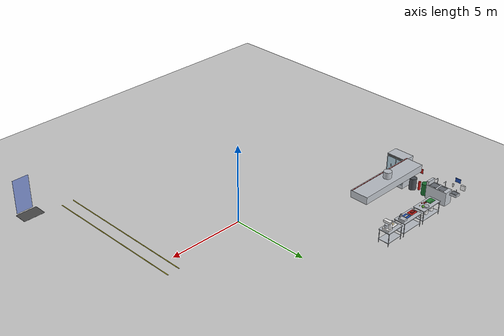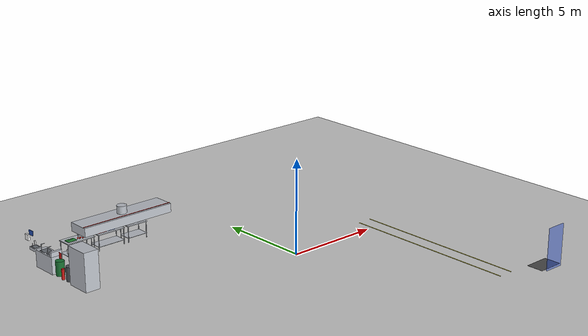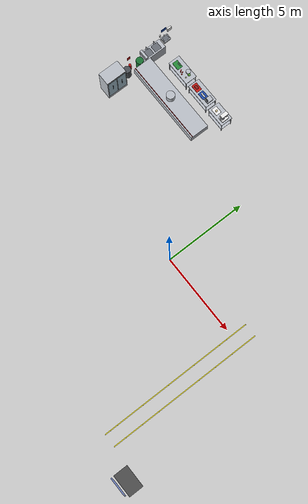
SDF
<sdf version="1.7">
 <world name="default">
  <model name="ground_plane">
   <static>1</static>
   <link name="link">
    <collision name="collision">
     <geometry><plane><normal>0 0 1</normal><size>100 100</size></plane></geometry>
     <surface><friction><ode><mu>100</mu><mu2>50</mu2></ode></friction></surface>
    </collision>
    <visual name="visual">
     <cast_shadows>0</cast_shadows>
     <geometry><plane><normal>0 0 1</normal><size>100 100</size></plane></geometry>
     <material>
      <script><uri>file://media/materials/scripts/gazebo.material</uri><name>Gazebo/Grey</name></script>
     </material>
    </visual>
   </link>
  </model>
  <model name="tunibot_layout">
   <static>1</static>
   <link name="entrance_door">
    <pose>8.075 -9.686 1.100 0 0 0.0000</pose>
    <collision name="entrance_door_collision">
     <geometry><box><size>1.050 0.060 2.200</size></box></geometry>
    </collision>
    <visual name="entrance_door_visual">
     <geometry><box><size>1.050 0.060 2.200</size></box></geometry>
     <material>
      <script><uri>file://media/materials/scripts/gazebo.material</uri><name>Gazebo/BlueTransparent</name></script>
     </material>
    </visual>
   </link>
   <link name="mark_entrance">
    <pose>8.075 -9.100 0.002 0 0 0.0000</pose>
    <visual name="mark_entrance_visual">
     <geometry><box><size>1.400 0.900 0.004</size></box></geometry>
     <material>
      <script><uri>file://media/materials/scripts/gazebo.material</uri><name>Gazebo/DarkGrey</name></script>
     </material>
    </visual>
   </link>
   <link name="lane_3_l">
    <pose>5.400 -3.800 0.002 0 0 -1.5708</pose>
    <visual name="lane_3_l_visual">
     <geometry><box><size>9.600 0.050 0.004</size></box></geometry>
     <material>
      <script><uri>file://media/materials/scripts/gazebo.material</uri><name>Gazebo/Yellow</name></script>
     </material>
    </visual>
   </link>
   <link name="lane_3_r">
    <pose>6.200 -3.800 0.002 0 0 -1.5708</pose>
    <visual name="lane_3_r_visual">
     <geometry><box><size>9.600 0.050 0.004</size></box></geometry>
     <material>
      <script><uri>file://media/materials/scripts/gazebo.material</uri><name>Gazebo/Yellow</name></script>
     </material>
    </visual>
   </link>
   <link name="k_hood">
    <visual name="k_hood_v0">
     <pose>-6.700 5.325 2.225 0 0 0.0000</pose>
     <geometry><box><size>5.100 1.150 0.450</size></box></geometry>
     <material>
      <ambient>0.44 0.46 0.47 1</ambient>
      <diffuse>0.74 0.76 0.79 1</diffuse>
      <specular>0.80 0.80 0.80 1</specular>
     </material>
    </visual>
    <visual name="k_hood_v1">
     <pose>-8.940 5.325 1.995 0 0 0.0000</pose>
     <geometry><box><size>0.220 0.650 0.010</size></box></geometry>
     <material>
      <ambient>0.25 0.26 0.28 1</ambient>
      <diffuse>0.42 0.44 0.47 1</diffuse>
      <specular>0.15 0.15 0.15 1</specular>
     </material>
    </visual>
    <visual name="k_hood_v2">
     <pose>-8.630 5.325 1.995 0 0 0.0000</pose>
     <geometry><box><size>0.220 0.650 0.010</size></box></geometry>
     <material>
      <ambient>0.25 0.26 0.28 1</ambient>
      <diffuse>0.42 0.44 0.47 1</diffuse>
      <specular>0.15 0.15 0.15 1</specular>
     </material>
    </visual>
    <visual name="k_hood_v3">
     <pose>-8.320 5.325 1.995 0 0 0.0000</pose>
     <geometry><box><size>0.220 0.650 0.010</size></box></geometry>
     <material>
      <ambient>0.25 0.26 0.28 1</ambient>
      <diffuse>0.42 0.44 0.47 1</diffuse>
      <specular>0.15 0.15 0.15 1</specular>
     </material>
    </visual>
    <visual name="k_hood_v4">
     <pose>-8.010 5.325 1.995 0 0 0.0000</pose>
     <geometry><box><size>0.220 0.650 0.010</size></box></geometry>
     <material>
      <ambient>0.25 0.26 0.28 1</ambient>
      <diffuse>0.42 0.44 0.47 1</diffuse>
      <specular>0.15 0.15 0.15 1</specular>
     </material>
    </visual>
    <visual name="k_hood_v5">
     <pose>-7.700 5.325 1.995 0 0 0.0000</pose>
     <geometry><box><size>0.220 0.650 0.010</size></box></geometry>
     <material>
      <ambient>0.25 0.26 0.28 1</ambient>
      <diffuse>0.42 0.44 0.47 1</diffuse>
      <specular>0.15 0.15 0.15 1</specular>
     </material>
    </visual>
    <visual name="k_hood_v6">
     <pose>-7.390 5.325 1.995 0 0 0.0000</pose>
     <geometry><box><size>0.220 0.650 0.010</size></box></geometry>
     <material>
      <ambient>0.25 0.26 0.28 1</ambient>
      <diffuse>0.42 0.44 0.47 1</diffuse>
      <specular>0.15 0.15 0.15 1</specular>
     </material>
    </visual>
    <visual name="k_hood_v7">
     <pose>-7.080 5.325 1.995 0 0 0.0000</pose>
     <geometry><box><size>0.220 0.650 0.010</size></box></geometry>
     <material>
      <ambient>0.25 0.26 0.28 1</ambient>
      <diffuse>0.42 0.44 0.47 1</diffuse>
      <specular>0.15 0.15 0.15 1</specular>
     </material>
    </visual>
    <visual name="k_hood_v8">
     <pose>-6.770 5.325 1.995 0 0 0.0000</pose>
     <geometry><box><size>0.220 0.650 0.010</size></box></geometry>
     <material>
      <ambient>0.25 0.26 0.28 1</ambient>
      <diffuse>0.42 0.44 0.47 1</diffuse>
      <specular>0.15 0.15 0.15 1</specular>
     </material>
    </visual>
    <visual name="k_hood_v9">
     <pose>-6.460 5.325 1.995 0 0 0.0000</pose>
     <geometry><box><size>0.220 0.650 0.010</size></box></geometry>
     <material>
      <ambient>0.25 0.26 0.28 1</ambient>
      <diffuse>0.42 0.44 0.47 1</diffuse>
      <specular>0.15 0.15 0.15 1</specular>
     </material>
    </visual>
    <visual name="k_hood_v10">
     <pose>-6.150 5.325 1.995 0 0 0.0000</pose>
     <geometry><box><size>0.220 0.650 0.010</size></box></geometry>
     <material>
      <ambient>0.25 0.26 0.28 1</ambient>
      <diffuse>0.42 0.44 0.47 1</diffuse>
      <specular>0.15 0.15 0.15 1</specular>
     </material>
    </visual>
    <visual name="k_hood_v11">
     <pose>-5.840 5.325 1.995 0 0 0.0000</pose>
     <geometry><box><size>0.220 0.650 0.010</size></box></geometry>
     <material>
      <ambient>0.25 0.26 0.28 1</ambient>
      <diffuse>0.42 0.44 0.47 1</diffuse>
      <specular>0.15 0.15 0.15 1</specular>
     </material>
    </visual>
    <visual name="k_hood_v12">
     <pose>-5.530 5.325 1.995 0 0 0.0000</pose>
     <geometry><box><size>0.220 0.650 0.010</size></box></geometry>
     <material>
      <ambient>0.25 0.26 0.28 1</ambient>
      <diffuse>0.42 0.44 0.47 1</diffuse>
      <specular>0.15 0.15 0.15 1</specular>
     </material>
    </visual>
    <visual name="k_hood_v13">
     <pose>-5.220 5.325 1.995 0 0 0.0000</pose>
     <geometry><box><size>0.220 0.650 0.010</size></box></geometry>
     <material>
      <ambient>0.25 0.26 0.28 1</ambient>
      <diffuse>0.42 0.44 0.47 1</diffuse>
      <specular>0.15 0.15 0.15 1</specular>
     </material>
    </visual>
    <visual name="k_hood_v14">
     <pose>-4.910 5.325 1.995 0 0 0.0000</pose>
     <geometry><box><size>0.220 0.650 0.010</size></box></geometry>
     <material>
      <ambient>0.25 0.26 0.28 1</ambient>
      <diffuse>0.42 0.44 0.47 1</diffuse>
      <specular>0.15 0.15 0.15 1</specular>
     </material>
    </visual>
    <visual name="k_hood_v15">
     <pose>-4.600 5.325 1.995 0 0 0.0000</pose>
     <geometry><box><size>0.220 0.650 0.010</size></box></geometry>
     <material>
      <ambient>0.25 0.26 0.28 1</ambient>
      <diffuse>0.42 0.44 0.47 1</diffuse>
      <specular>0.15 0.15 0.15 1</specular>
     </material>
    </visual>
    <visual name="k_hood_v16">
     <pose>-4.290 5.325 1.995 0 0 0.0000</pose>
     <geometry><box><size>0.220 0.650 0.010</size></box></geometry>
     <material>
      <ambient>0.25 0.26 0.28 1</ambient>
      <diffuse>0.42 0.44 0.47 1</diffuse>
      <specular>0.15 0.15 0.15 1</specular>
     </material>
    </visual>
    <visual name="k_hood_v17">
     <pose>-8.600 4.865 1.993 0 0 0.0000</pose>
     <geometry><box><size>0.300 0.130 0.015</size></box></geometry>
     <material>
      <ambient>0.57 0.57 0.57 1</ambient>
      <diffuse>0.95 0.95 0.95 1</diffuse>
      <specular>0.15 0.15 0.15 1</specular>
      <emissive>0.90 0.90 0.85 1</emissive>
     </material>
    </visual>
    <visual name="k_hood_v18">
     <pose>-7.300 4.865 1.993 0 0 0.0000</pose>
     <geometry><box><size>0.300 0.130 0.015</size></box></geometry>
     <material>
      <ambient>0.57 0.57 0.57 1</ambient>
      <diffuse>0.95 0.95 0.95 1</diffuse>
      <specular>0.15 0.15 0.15 1</specular>
      <emissive>0.90 0.90 0.85 1</emissive>
     </material>
    </visual>
    <visual name="k_hood_v19">
     <pose>-6.000 4.865 1.993 0 0 0.0000</pose>
     <geometry><box><size>0.300 0.130 0.015</size></box></geometry>
     <material>
      <ambient>0.57 0.57 0.57 1</ambient>
      <diffuse>0.95 0.95 0.95 1</diffuse>
      <specular>0.15 0.15 0.15 1</specular>
      <emissive>0.90 0.90 0.85 1</emissive>
     </material>
    </visual>
    <visual name="k_hood_v20">
     <pose>-4.800 4.865 1.993 0 0 0.0000</pose>
     <geometry><box><size>0.300 0.130 0.015</size></box></geometry>
     <material>
      <ambient>0.57 0.57 0.57 1</ambient>
      <diffuse>0.95 0.95 0.95 1</diffuse>
      <specular>0.15 0.15 0.15 1</specular>
      <emissive>0.90 0.90 0.85 1</emissive>
     </material>
    </visual>
    <visual name="k_hood_v21">
     <pose>-6.700 5.320 2.650 0 0 0</pose>
     <geometry><cylinder><radius>0.250</radius><length>0.400</length></cylinder></geometry>
     <material>
      <ambient>0.44 0.46 0.47 1</ambient>
      <diffuse>0.74 0.76 0.79 1</diffuse>
      <specular>0.70 0.70 0.70 1</specular>
     </material>
    </visual>
    <visual name="k_hood_v22">
     <pose>-6.700 4.850 2.470 0 1.5708 0</pose>
     <geometry><cylinder><radius>0.015</radius><length>5.100</length></cylinder></geometry>
     <material>
      <ambient>0.47 0.06 0.05 1</ambient>
      <diffuse>0.78 0.10 0.08 1</diffuse>
      <specular>0.15 0.15 0.15 1</specular>
     </material>
    </visual>
   </link>
   <link name="k_prep_veg">
    <collision name="k_prep_veg_c0">
     <pose>-8.100 7.275 0.450 0 0 0</pose>
     <geometry><box><size>1.600 0.750 0.900</size></box></geometry>
    </collision>
    <visual name="k_prep_veg_v0">
     <pose>-8.100 7.275 0.880 0 0 0.0000</pose>
     <geometry><box><size>1.600 0.750 0.040</size></box></geometry>
     <material>
      <ambient>0.44 0.46 0.47 1</ambient>
      <diffuse>0.74 0.76 0.79 1</diffuse>
      <specular>0.80 0.80 0.80 1</specular>
     </material>
    </visual>
    <visual name="k_prep_veg_v1">
     <pose>-8.860 6.940 0.430 0 0 0</pose>
     <geometry><cylinder><radius>0.020</radius><length>0.860</length></cylinder></geometry>
     <material>
      <ambient>0.44 0.46 0.47 1</ambient>
      <diffuse>0.74 0.76 0.79 1</diffuse>
      <specular>0.60 0.60 0.60 1</specular>
     </material>
    </visual>
    <visual name="k_prep_veg_v2">
     <pose>-8.860 7.610 0.430 0 0 0</pose>
     <geometry><cylinder><radius>0.020</radius><length>0.860</length></cylinder></geometry>
     <material>
      <ambient>0.44 0.46 0.47 1</ambient>
      <diffuse>0.74 0.76 0.79 1</diffuse>
      <specular>0.60 0.60 0.60 1</specular>
     </material>
    </visual>
    <visual name="k_prep_veg_v3">
     <pose>-7.340 6.940 0.430 0 0 0</pose>
     <geometry><cylinder><radius>0.020</radius><length>0.860</length></cylinder></geometry>
     <material>
      <ambient>0.44 0.46 0.47 1</ambient>
      <diffuse>0.74 0.76 0.79 1</diffuse>
      <specular>0.60 0.60 0.60 1</specular>
     </material>
    </visual>
    <visual name="k_prep_veg_v4">
     <pose>-7.340 7.610 0.430 0 0 0</pose>
     <geometry><cylinder><radius>0.020</radius><length>0.860</length></cylinder></geometry>
     <material>
      <ambient>0.44 0.46 0.47 1</ambient>
      <diffuse>0.74 0.76 0.79 1</diffuse>
      <specular>0.60 0.60 0.60 1</specular>
     </material>
    </visual>
    <visual name="k_prep_veg_v5">
     <pose>-8.100 7.275 0.230 0 0 0.0000</pose>
     <geometry><box><size>1.560 0.710 0.020</size></box></geometry>
     <material>
      <ambient>0.44 0.46 0.47 1</ambient>
      <diffuse>0.74 0.76 0.79 1</diffuse>
      <specular>0.60 0.60 0.60 1</specular>
     </material>
    </visual>
    <visual name="k_prep_veg_v6">
     <pose>-8.500 7.225 0.910 0 0 0.0000</pose>
     <geometry><box><size>0.500 0.350 0.020</size></box></geometry>
     <material>
      <ambient>0.09 0.33 0.13 1</ambient>
      <diffuse>0.15 0.55 0.22 1</diffuse>
      <specular>0.15 0.15 0.15 1</specular>
     </material>
    </visual>
    <visual name="k_prep_veg_v7">
     <pose>-8.475 7.315 0.925 0 0 0.0000</pose>
     <geometry><box><size>0.250 0.030 0.010</size></box></geometry>
     <material>
      <ambient>0.44 0.46 0.47 1</ambient>
      <diffuse>0.74 0.76 0.79 1</diffuse>
      <specular>1.00 1.00 1.00 1</specular>
     </material>
    </visual>
    <visual name="k_prep_veg_v8">
     <pose>-8.050 7.100 0.940 0 0 0</pose>
     <geometry><sphere><radius>0.038</radius></sphere></geometry>
     <material>
      <ambient>0.51 0.07 0.05 1</ambient>
      <diffuse>0.85 0.12 0.08 1</diffuse>
      <specular>0.20 0.20 0.20 1</specular>
     </material>
    </visual>
    <visual name="k_prep_veg_v9">
     <pose>-7.970 7.170 0.940 0 0 0</pose>
     <geometry><sphere><radius>0.038</radius></sphere></geometry>
     <material>
      <ambient>0.51 0.07 0.05 1</ambient>
      <diffuse>0.85 0.12 0.08 1</diffuse>
      <specular>0.20 0.20 0.20 1</specular>
     </material>
    </visual>
    <visual name="k_prep_veg_v10">
     <pose>-8.120 7.180 0.940 0 0 0</pose>
     <geometry><sphere><radius>0.038</radius></sphere></geometry>
     <material>
      <ambient>0.51 0.07 0.05 1</ambient>
      <diffuse>0.85 0.12 0.08 1</diffuse>
      <specular>0.20 0.20 0.20 1</specular>
     </material>
    </visual>
    <visual name="k_prep_veg_v11">
     <pose>-7.900 7.060 0.940 0 0 0</pose>
     <geometry><sphere><radius>0.038</radius></sphere></geometry>
     <material>
      <ambient>0.51 0.07 0.05 1</ambient>
      <diffuse>0.85 0.12 0.08 1</diffuse>
      <specular>0.20 0.20 0.20 1</specular>
     </material>
    </visual>
    <visual name="k_prep_veg_v12">
     <pose>-7.600 7.350 0.980 0 0 0</pose>
     <geometry><sphere><radius>0.080</radius></sphere></geometry>
     <material>
      <ambient>0.21 0.39 0.12 1</ambient>
      <diffuse>0.35 0.65 0.20 1</diffuse>
      <specular>0.20 0.20 0.20 1</specular>
     </material>
    </visual>
    <visual name="k_prep_veg_v13">
     <pose>-7.600 7.120 0.940 0 0 0</pose>
     <geometry><sphere><radius>0.040</radius></sphere></geometry>
     <material>
      <ambient>0.54 0.51 0.39 1</ambient>
      <diffuse>0.90 0.85 0.65 1</diffuse>
      <specular>0.20 0.20 0.20 1</specular>
     </material>
    </visual>
    <visual name="k_prep_veg_v14">
     <pose>-7.800 7.450 0.945 0 0 0</pose>
     <geometry><cylinder><radius>0.140</radius><length>0.090</length></cylinder></geometry>
     <material>
      <ambient>0.44 0.46 0.47 1</ambient>
      <diffuse>0.74 0.76 0.79 1</diffuse>
      <specular>0.90 0.90 0.90 1</specular>
     </material>
    </visual>
    <visual name="k_prep_veg_v15">
     <pose>-8.600 7.270 0.340 0 0 0</pose>
     <geometry><cylinder><radius>0.120</radius><length>0.200</length></cylinder></geometry>
     <material>
      <ambient>0.57 0.57 0.57 1</ambient>
      <diffuse>0.95 0.95 0.95 1</diffuse>
      <specular>0.15 0.15 0.15 1</specular>
     </material>
    </visual>
    <visual name="k_prep_veg_v16">
     <pose>-8.100 7.270 0.340 0 0 0</pose>
     <geometry><cylinder><radius>0.120</radius><length>0.200</length></cylinder></geometry>
     <material>
      <ambient>0.57 0.57 0.57 1</ambient>
      <diffuse>0.95 0.95 0.95 1</diffuse>
      <specular>0.15 0.15 0.15 1</specular>
     </material>
    </visual>
    <visual name="k_prep_veg_v17">
     <pose>-7.600 7.270 0.340 0 0 0</pose>
     <geometry><cylinder><radius>0.120</radius><length>0.200</length></cylinder></geometry>
     <material>
      <ambient>0.57 0.57 0.57 1</ambient>
      <diffuse>0.95 0.95 0.95 1</diffuse>
      <specular>0.15 0.15 0.15 1</specular>
     </material>
    </visual>
   </link>
   <link name="k_prep_meat">
    <collision name="k_prep_meat_c0">
     <pose>-6.300 7.275 0.450 0 0 0</pose>
     <geometry><box><size>1.600 0.750 0.900</size></box></geometry>
    </collision>
    <visual name="k_prep_meat_v0">
     <pose>-6.300 7.275 0.880 0 0 0.0000</pose>
     <geometry><box><size>1.600 0.750 0.040</size></box></geometry>
     <material>
      <ambient>0.44 0.46 0.47 1</ambient>
      <diffuse>0.74 0.76 0.79 1</diffuse>
      <specular>0.80 0.80 0.80 1</specular>
     </material>
    </visual>
    <visual name="k_prep_meat_v1">
     <pose>-7.060 6.940 0.430 0 0 0</pose>
     <geometry><cylinder><radius>0.020</radius><length>0.860</length></cylinder></geometry>
     <material>
      <ambient>0.44 0.46 0.47 1</ambient>
      <diffuse>0.74 0.76 0.79 1</diffuse>
      <specular>0.60 0.60 0.60 1</specular>
     </material>
    </visual>
    <visual name="k_prep_meat_v2">
     <pose>-7.060 7.610 0.430 0 0 0</pose>
     <geometry><cylinder><radius>0.020</radius><length>0.860</length></cylinder></geometry>
     <material>
      <ambient>0.44 0.46 0.47 1</ambient>
      <diffuse>0.74 0.76 0.79 1</diffuse>
      <specular>0.60 0.60 0.60 1</specular>
     </material>
    </visual>
    <visual name="k_prep_meat_v3">
     <pose>-5.540 6.940 0.430 0 0 0</pose>
     <geometry><cylinder><radius>0.020</radius><length>0.860</length></cylinder></geometry>
     <material>
      <ambient>0.44 0.46 0.47 1</ambient>
      <diffuse>0.74 0.76 0.79 1</diffuse>
      <specular>0.60 0.60 0.60 1</specular>
     </material>
    </visual>
    <visual name="k_prep_meat_v4">
     <pose>-5.540 7.610 0.430 0 0 0</pose>
     <geometry><cylinder><radius>0.020</radius><length>0.860</length></cylinder></geometry>
     <material>
      <ambient>0.44 0.46 0.47 1</ambient>
      <diffuse>0.74 0.76 0.79 1</diffuse>
      <specular>0.60 0.60 0.60 1</specular>
     </material>
    </visual>
    <visual name="k_prep_meat_v5">
     <pose>-6.300 7.275 0.230 0 0 0.0000</pose>
     <geometry><box><size>1.560 0.710 0.020</size></box></geometry>
     <material>
      <ambient>0.44 0.46 0.47 1</ambient>
      <diffuse>0.74 0.76 0.79 1</diffuse>
      <specular>0.60 0.60 0.60 1</specular>
     </material>
    </visual>
    <visual name="k_prep_meat_v6">
     <pose>-6.750 7.225 0.910 0 0 0.0000</pose>
     <geometry><box><size>0.500 0.350 0.020</size></box></geometry>
     <material>
      <ambient>0.47 0.06 0.05 1</ambient>
      <diffuse>0.78 0.10 0.08 1</diffuse>
      <specular>0.15 0.15 0.15 1</specular>
     </material>
    </visual>
    <visual name="k_prep_meat_v7">
     <pose>-6.775 7.225 0.935 0 0 0.0000</pose>
     <geometry><box><size>0.250 0.150 0.030</size></box></geometry>
     <material>
      <ambient>0.33 0.07 0.06 1</ambient>
      <diffuse>0.55 0.12 0.10 1</diffuse>
      <specular>0.15 0.15 0.15 1</specular>
     </material>
    </visual>
    <visual name="k_prep_meat_v8">
     <pose>-6.175 7.225 0.910 0 0 0.0000</pose>
     <geometry><box><size>0.450 0.350 0.020</size></box></geometry>
     <material>
      <ambient>0.07 0.18 0.42 1</ambient>
      <diffuse>0.12 0.30 0.70 1</diffuse>
      <specular>0.15 0.15 0.15 1</specular>
     </material>
    </visual>
    <visual name="k_prep_meat_v9">
     <pose>-6.170 7.230 0.935 0 0 0.0000</pose>
     <geometry><box><size>0.300 0.100 0.030</size></box></geometry>
     <material>
      <ambient>0.47 0.48 0.49 1</ambient>
      <diffuse>0.78 0.80 0.82 1</diffuse>
      <specular>0.60 0.60 0.60 1</specular>
     </material>
    </visual>
    <visual name="k_prep_meat_v10">
     <pose>-5.750 7.300 0.960 0 0 0.0000</pose>
     <geometry><box><size>0.300 0.400 0.120</size></box></geometry>
     <material>
      <ambient>0.44 0.46 0.47 1</ambient>
      <diffuse>0.74 0.76 0.79 1</diffuse>
      <specular>0.80 0.80 0.80 1</specular>
     </material>
    </visual>
    <visual name="k_prep_meat_v11">
     <pose>-5.750 7.150 1.120 1.5708 0 0</pose>
     <geometry><cylinder><radius>0.120</radius><length>0.020</length></cylinder></geometry>
     <material>
      <ambient>0.25 0.26 0.28 1</ambient>
      <diffuse>0.42 0.44 0.47 1</diffuse>
      <specular>0.90 0.90 0.90 1</specular>
     </material>
    </visual>
   </link>
   <link name="k_prep_pastry">
    <collision name="k_prep_pastry_c0">
     <pose>-4.700 7.275 0.450 0 0 0</pose>
     <geometry><box><size>1.200 0.750 0.900</size></box></geometry>
    </collision>
    <visual name="k_prep_pastry_v0">
     <pose>-4.700 7.275 0.880 0 0 0.0000</pose>
     <geometry><box><size>1.200 0.750 0.040</size></box></geometry>
     <material>
      <ambient>0.44 0.46 0.47 1</ambient>
      <diffuse>0.74 0.76 0.79 1</diffuse>
      <specular>0.80 0.80 0.80 1</specular>
     </material>
    </visual>
    <visual name="k_prep_pastry_v1">
     <pose>-5.260 6.940 0.430 0 0 0</pose>
     <geometry><cylinder><radius>0.020</radius><length>0.860</length></cylinder></geometry>
     <material>
      <ambient>0.44 0.46 0.47 1</ambient>
      <diffuse>0.74 0.76 0.79 1</diffuse>
      <specular>0.60 0.60 0.60 1</specular>
     </material>
    </visual>
    <visual name="k_prep_pastry_v2">
     <pose>-5.260 7.610 0.430 0 0 0</pose>
     <geometry><cylinder><radius>0.020</radius><length>0.860</length></cylinder></geometry>
     <material>
      <ambient>0.44 0.46 0.47 1</ambient>
      <diffuse>0.74 0.76 0.79 1</diffuse>
      <specular>0.60 0.60 0.60 1</specular>
     </material>
    </visual>
    <visual name="k_prep_pastry_v3">
     <pose>-4.140 6.940 0.430 0 0 0</pose>
     <geometry><cylinder><radius>0.020</radius><length>0.860</length></cylinder></geometry>
     <material>
      <ambient>0.44 0.46 0.47 1</ambient>
      <diffuse>0.74 0.76 0.79 1</diffuse>
      <specular>0.60 0.60 0.60 1</specular>
     </material>
    </visual>
    <visual name="k_prep_pastry_v4">
     <pose>-4.140 7.610 0.430 0 0 0</pose>
     <geometry><cylinder><radius>0.020</radius><length>0.860</length></cylinder></geometry>
     <material>
      <ambient>0.44 0.46 0.47 1</ambient>
      <diffuse>0.74 0.76 0.79 1</diffuse>
      <specular>0.60 0.60 0.60 1</specular>
     </material>
    </visual>
    <visual name="k_prep_pastry_v5">
     <pose>-4.700 7.275 0.230 0 0 0.0000</pose>
     <geometry><box><size>1.160 0.710 0.020</size></box></geometry>
     <material>
      <ambient>0.44 0.46 0.47 1</ambient>
      <diffuse>0.74 0.76 0.79 1</diffuse>
      <specular>0.60 0.60 0.60 1</specular>
     </material>
    </visual>
    <visual name="k_prep_pastry_v6">
     <pose>-4.975 7.225 0.910 0 0 0.0000</pose>
     <geometry><box><size>0.450 0.350 0.020</size></box></geometry>
     <material>
      <ambient>0.57 0.57 0.57 1</ambient>
      <diffuse>0.95 0.95 0.95 1</diffuse>
      <specular>0.15 0.15 0.15 1</specular>
     </material>
    </visual>
    <visual name="k_prep_pastry_v7">
     <pose>-4.950 7.220 0.970 0 0 0</pose>
     <geometry><sphere><radius>0.070</radius></sphere></geometry>
     <material>
      <ambient>0.56 0.51 0.39 1</ambient>
      <diffuse>0.93 0.85 0.65 1</diffuse>
      <specular>0.20 0.20 0.20 1</specular>
     </material>
    </visual>
    <visual name="k_prep_pastry_v8">
     <pose>-4.375 7.275 0.950 0 0 0.0000</pose>
     <geometry><box><size>0.350 0.450 0.100</size></box></geometry>
     <material>
      <ambient>0.57 0.57 0.57 1</ambient>
      <diffuse>0.95 0.95 0.95 1</diffuse>
      <specular>0.15 0.15 0.15 1</specular>
     </material>
    </visual>
    <visual name="k_prep_pastry_v9">
     <pose>-4.400 7.440 1.225 0 0 0.0000</pose>
     <geometry><box><size>0.160 0.120 0.450</size></box></geometry>
     <material>
      <ambient>0.57 0.57 0.57 1</ambient>
      <diffuse>0.95 0.95 0.95 1</diffuse>
      <specular>0.15 0.15 0.15 1</specular>
     </material>
    </visual>
    <visual name="k_prep_pastry_v10">
     <pose>-4.365 7.275 1.440 0 0 0.0000</pose>
     <geometry><box><size>0.230 0.450 0.120</size></box></geometry>
     <material>
      <ambient>0.57 0.57 0.57 1</ambient>
      <diffuse>0.95 0.95 0.95 1</diffuse>
      <specular>0.15 0.15 0.15 1</specular>
     </material>
    </visual>
    <visual name="k_prep_pastry_v11">
     <pose>-4.400 7.200 1.100 0 0 0</pose>
     <geometry><cylinder><radius>0.120</radius><length>0.200</length></cylinder></geometry>
     <material>
      <ambient>0.44 0.46 0.47 1</ambient>
      <diffuse>0.74 0.76 0.79 1</diffuse>
      <specular>0.90 0.90 0.90 1</specular>
     </material>
    </visual>
   </link>
   <link name="k_prep_sink">
    <collision name="k_prep_sink_c0">
     <pose>-10.115 6.700 0.450 0 0 0.0000</pose>
     <geometry><box><size>0.600 1.400 0.900</size></box></geometry>
    </collision>
    <visual name="k_prep_sink_v0">
     <pose>-10.115 6.700 0.450 0 0 0.0000</pose>
     <geometry><box><size>0.600 1.400 0.900</size></box></geometry>
     <material>
      <ambient>0.44 0.46 0.47 1</ambient>
      <diffuse>0.74 0.76 0.79 1</diffuse>
      <specular>0.60 0.60 0.60 1</specular>
     </material>
    </visual>
    <visual name="k_prep_sink_v1">
     <pose>-10.115 6.400 0.883 0 0 0.0000</pose>
     <geometry><box><size>0.440 0.440 0.045</size></box></geometry>
     <material>
      <ambient>0.25 0.26 0.28 1</ambient>
      <diffuse>0.42 0.44 0.47 1</diffuse>
      <specular>0.80 0.80 0.80 1</specular>
     </material>
    </visual>
    <visual name="k_prep_sink_v2">
     <pose>-10.355 6.400 1.100 0 0 0</pose>
     <geometry><cylinder><radius>0.015</radius><length>0.400</length></cylinder></geometry>
     <material>
      <ambient>0.44 0.46 0.47 1</ambient>
      <diffuse>0.74 0.76 0.79 1</diffuse>
      <specular>1.00 1.00 1.00 1</specular>
     </material>
    </visual>
    <visual name="k_prep_sink_v3">
     <pose>-10.255 6.400 1.300 0 1.5708 0</pose>
     <geometry><cylinder><radius>0.012</radius><length>0.220</length></cylinder></geometry>
     <material>
      <ambient>0.44 0.46 0.47 1</ambient>
      <diffuse>0.74 0.76 0.79 1</diffuse>
      <specular>1.00 1.00 1.00 1</specular>
     </material>
    </visual>
    <visual name="k_prep_sink_v4">
     <pose>-10.115 6.950 0.883 0 0 0.0000</pose>
     <geometry><box><size>0.440 0.440 0.045</size></box></geometry>
     <material>
      <ambient>0.25 0.26 0.28 1</ambient>
      <diffuse>0.42 0.44 0.47 1</diffuse>
      <specular>0.80 0.80 0.80 1</specular>
     </material>
    </visual>
    <visual name="k_prep_sink_v5">
     <pose>-10.355 6.950 1.100 0 0 0</pose>
     <geometry><cylinder><radius>0.015</radius><length>0.400</length></cylinder></geometry>
     <material>
      <ambient>0.44 0.46 0.47 1</ambient>
      <diffuse>0.74 0.76 0.79 1</diffuse>
      <specular>1.00 1.00 1.00 1</specular>
     </material>
    </visual>
    <visual name="k_prep_sink_v6">
     <pose>-10.255 6.950 1.300 0 1.5708 0</pose>
     <geometry><cylinder><radius>0.012</radius><length>0.220</length></cylinder></geometry>
     <material>
      <ambient>0.44 0.46 0.47 1</ambient>
      <diffuse>0.74 0.76 0.79 1</diffuse>
      <specular>1.00 1.00 1.00 1</specular>
     </material>
    </visual>
    <visual name="k_prep_sink_v7">
     <pose>-10.115 6.075 1.025 0 0 0.0000</pose>
     <geometry><box><size>0.600 0.150 0.250</size></box></geometry>
     <material>
      <ambient>0.44 0.46 0.47 1</ambient>
      <diffuse>0.74 0.76 0.79 1</diffuse>
      <specular>0.80 0.80 0.80 1</specular>
     </material>
    </visual>
    <visual name="k_prep_sink_v8">
     <pose>-10.225 7.725 0.825 0 0 0.0000</pose>
     <geometry><box><size>0.380 0.450 0.150</size></box></geometry>
     <material>
      <ambient>0.44 0.46 0.47 1</ambient>
      <diffuse>0.74 0.76 0.79 1</diffuse>
      <specular>0.80 0.80 0.80 1</specular>
     </material>
    </visual>
    <visual name="k_prep_sink_v9">
     <pose>-10.225 7.725 0.883 0 0 0.0000</pose>
     <geometry><box><size>0.280 0.350 0.045</size></box></geometry>
     <material>
      <ambient>0.25 0.26 0.28 1</ambient>
      <diffuse>0.42 0.44 0.47 1</diffuse>
      <specular>0.90 0.90 0.90 1</specular>
     </material>
    </visual>
    <visual name="k_prep_sink_v10">
     <pose>-10.375 7.725 1.010 0 0 0</pose>
     <geometry><cylinder><radius>0.012</radius><length>0.220</length></cylinder></geometry>
     <material>
      <ambient>0.44 0.46 0.47 1</ambient>
      <diffuse>0.74 0.76 0.79 1</diffuse>
      <specular>1.00 1.00 1.00 1</specular>
     </material>
    </visual>
    <visual name="k_prep_sink_v11">
     <pose>-10.395 7.440 1.250 0 0 0.0000</pose>
     <geometry><box><size>0.060 0.080 0.200</size></box></geometry>
     <material>
      <ambient>0.57 0.57 0.57 1</ambient>
      <diffuse>0.95 0.95 0.95 1</diffuse>
      <specular>0.15 0.15 0.15 1</specular>
     </material>
    </visual>
    <visual name="k_prep_sink_v12">
     <pose>-10.395 8.110 1.350 0 0 0.0000</pose>
     <geometry><box><size>0.100 0.280 0.300</size></box></geometry>
     <material>
      <ambient>0.57 0.57 0.57 1</ambient>
      <diffuse>0.95 0.95 0.95 1</diffuse>
      <specular>0.15 0.15 0.15 1</specular>
     </material>
    </visual>
    <visual name="k_prep_sink_v13">
     <pose>-10.405 7.725 1.675 0 0 0.0000</pose>
     <geometry><box><size>0.020 0.350 0.250</size></box></geometry>
     <material>
      <ambient>0.07 0.18 0.42 1</ambient>
      <diffuse>0.12 0.30 0.70 1</diffuse>
      <specular>0.15 0.15 0.15 1</specular>
     </material>
    </visual>
   </link>
   <link name="k_reachin">
    <collision name="k_reachin_c0">
     <pose>-10.015 3.800 1.000 0 0 0.0000</pose>
     <geometry><box><size>0.800 1.300 2.000</size></box></geometry>
    </collision>
    <visual name="k_reachin_v0">
     <pose>-10.015 3.800 1.000 0 0 0.0000</pose>
     <geometry><box><size>0.800 1.300 2.000</size></box></geometry>
     <material>
      <ambient>0.44 0.46 0.47 1</ambient>
      <diffuse>0.74 0.76 0.79 1</diffuse>
      <specular>0.70 0.70 0.70 1</specular>
     </material>
    </visual>
    <visual name="k_reachin_v1">
     <pose>-9.610 3.490 1.050 0 0 0.0000</pose>
     <geometry><box><size>0.010 0.580 1.600</size></box></geometry>
     <material>
      <ambient>0.42 0.49 0.53 1</ambient>
      <diffuse>0.70 0.82 0.88 1</diffuse>
      <specular>0.90 0.90 0.90 1</specular>
      <emissive>0.08 0.10 0.12 1</emissive>
     </material>
    </visual>
    <visual name="k_reachin_v2">
     <pose>-9.590 3.490 1.150 0 0 0.0000</pose>
     <geometry><box><size>0.030 0.020 0.500</size></box></geometry>
     <material>
      <ambient>0.25 0.26 0.28 1</ambient>
      <diffuse>0.42 0.44 0.47 1</diffuse>
      <specular>0.15 0.15 0.15 1</specular>
     </material>
    </visual>
    <visual name="k_reachin_v3">
     <pose>-9.610 4.110 1.050 0 0 0.0000</pose>
     <geometry><box><size>0.010 0.580 1.600</size></box></geometry>
     <material>
      <ambient>0.42 0.49 0.53 1</ambient>
      <diffuse>0.70 0.82 0.88 1</diffuse>
      <specular>0.90 0.90 0.90 1</specular>
      <emissive>0.08 0.10 0.12 1</emissive>
     </material>
    </visual>
    <visual name="k_reachin_v4">
     <pose>-9.590 4.110 1.150 0 0 0.0000</pose>
     <geometry><box><size>0.030 0.020 0.500</size></box></geometry>
     <material>
      <ambient>0.25 0.26 0.28 1</ambient>
      <diffuse>0.42 0.44 0.47 1</diffuse>
      <specular>0.15 0.15 0.15 1</specular>
     </material>
    </visual>
    <visual name="k_reachin_v5">
     <pose>-9.610 3.800 1.935 0 0 0.0000</pose>
     <geometry><box><size>0.010 1.200 0.070</size></box></geometry>
     <material>
      <ambient>0.06 0.06 0.06 1</ambient>
      <diffuse>0.10 0.10 0.10 1</diffuse>
      <specular>0.15 0.15 0.15 1</specular>
      <emissive>0.00 0.25 0.05 1</emissive>
     </material>
    </visual>
    <visual name="k_reachin_v6">
     <pose>-10.315 5.200 0.275 0 0 0</pose>
     <geometry><cylinder><radius>0.075</radius><length>0.550</length></cylinder></geometry>
     <material>
      <ambient>0.47 0.06 0.05 1</ambient>
      <diffuse>0.78 0.10 0.08 1</diffuse>
      <specular>0.60 0.60 0.60 1</specular>
     </material>
    </visual>
    <visual name="k_reachin_v7">
     <pose>-10.400 5.200 1.250 0 0 0.0000</pose>
     <geometry><box><size>0.010 0.200 0.300</size></box></geometry>
     <material>
      <ambient>0.47 0.06 0.05 1</ambient>
      <diffuse>0.78 0.10 0.08 1</diffuse>
      <specular>0.15 0.15 0.15 1</specular>
     </material>
    </visual>
    <visual name="k_reachin_v8">
     <pose>-10.115 4.850 0.375 0 0 0</pose>
     <geometry><cylinder><radius>0.220</radius><length>0.750</length></cylinder></geometry>
     <material>
      <ambient>0.18 0.19 0.20 1</ambient>
      <diffuse>0.30 0.32 0.34 1</diffuse>
      <specular>0.15 0.15 0.15 1</specular>
     </material>
    </visual>
    <visual name="k_reachin_v9">
     <pose>-10.115 5.750 0.375 0 0 0</pose>
     <geometry><cylinder><radius>0.220</radius><length>0.750</length></cylinder></geometry>
     <material>
      <ambient>0.06 0.27 0.12 1</ambient>
      <diffuse>0.10 0.45 0.20 1</diffuse>
      <specular>0.15 0.15 0.15 1</specular>
     </material>
    </visual>
   </link>
  </model>
 </world>
</sdf>
